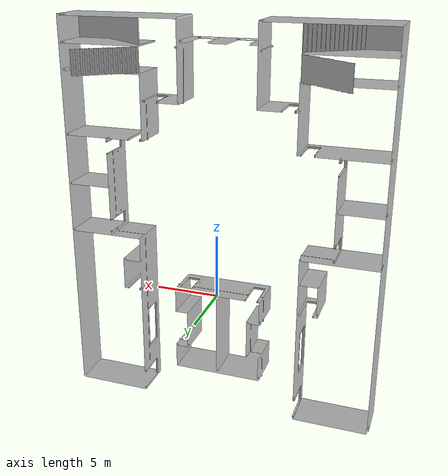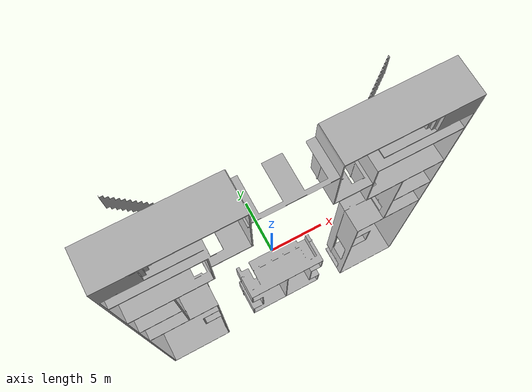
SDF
<?xml version="1.0" ?>
<sdf version="1.6">
  <model name="aws_robomaker_hospital_floor_03_walls">
    <link name="link">
      <visual name="visual">
	    <geometry>
          <mesh>
            <uri>model://aws_robomaker_hospital_floor_03_walls/meshes/aws_robomaker_hospital_floor_03_walls_visual.dae</uri>
          </mesh>
        </geometry>
      </visual>
      <collision name="collision">
        <geometry>
          <mesh>
            <uri>model://aws_robomaker_hospital_floor_03_walls/meshes/aws_robomaker_hospital_floor_03_walls_visual.dae</uri>
          </mesh>
        </geometry>
      </collision>
</link>
  <static>1</static>
  </model>
</sdf>
